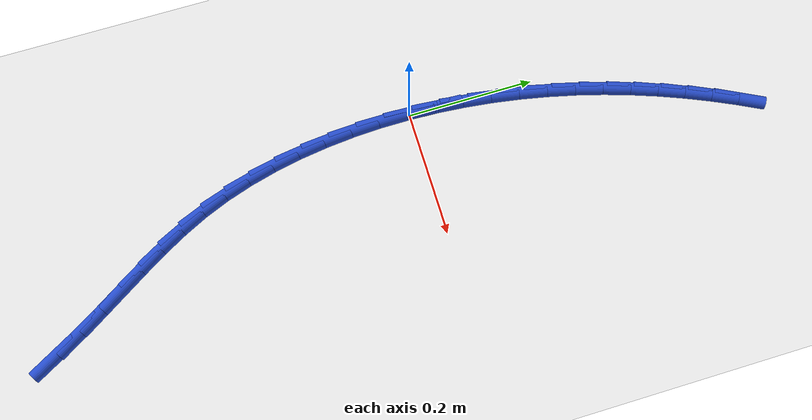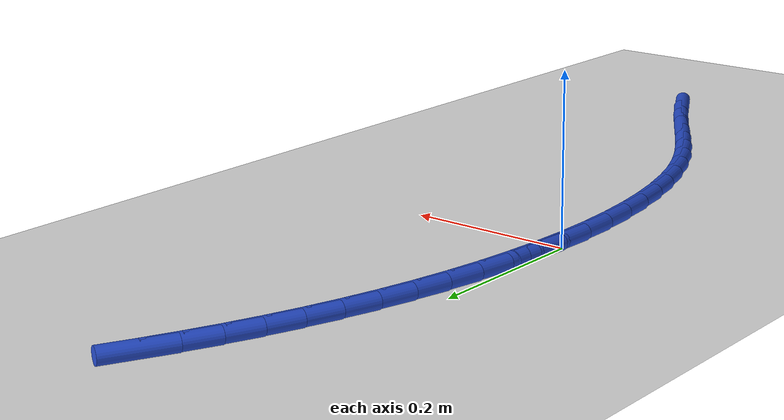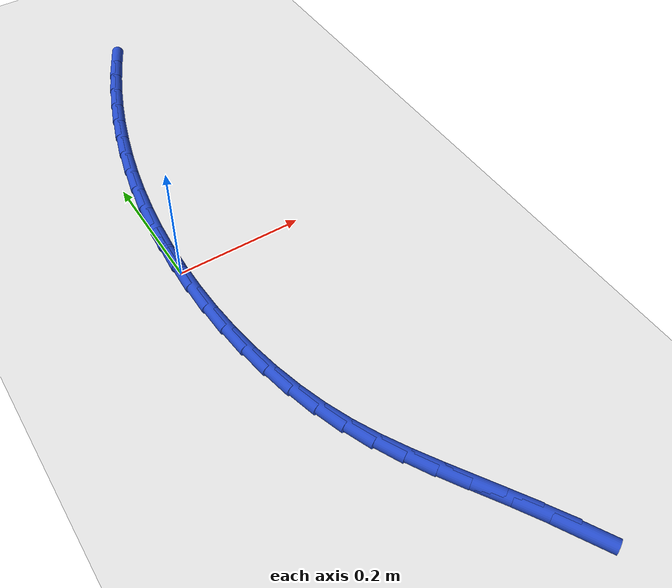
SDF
<sdf version="1.6">
 <world name="default">
  <model name="ground_plane">
   <static>1</static>
   <link name="link">
    <collision name="collision">
     <geometry><plane><normal>0 0 1</normal><size>100 100</size></plane></geometry>
     <surface><friction><ode><mu>100</mu><mu2>50</mu2></ode></friction></surface>
    </collision>
    <visual name="visual">
     <cast_shadows>0</cast_shadows>
     <geometry><plane><normal>0 0 1</normal><size>100 100</size></plane></geometry>
     <material>
      <script><uri>file://media/materials/scripts/gazebo.material</uri><name>Gazebo/WhiteGlow</name></script>
     </material>
    </visual>
   </link>
  </model>
  <model name="line">
   <link name="link_0">
    <pose>2.42861286636753e-17 1.457167719820518e-16 0.01 0 1.57 1.531080158508508</pose>
    <collision name="collision">
     <geometry><cylinder><radius>0.01</radius><length>0.08</length></cylinder></geometry>
    </collision>
    <visual name="visual">
     <material>
      <script><name>Gazebo/Blue</name><uri>file://media/materials/scripts/gazebo.material</uri></script>
     </material>
     <geometry><cylinder><radius>0.01</radius><length>0.08</length></cylinder></geometry>
    </visual>
   </link>
   <link name="link_1">
    <pose>0.001789789169502115 0.04504080056214195 0.01 0 1.57 1.4895727189833496</pose>
    <collision name="collision">
     <geometry><cylinder><radius>0.01</radius><length>0.08</length></cylinder></geometry>
    </collision>
    <visual name="visual">
     <material>
      <script><name>Gazebo/Blue</name><uri>file://media/materials/scripts/gazebo.material</uri></script>
     </material>
     <geometry><cylinder><radius>0.01</radius><length>0.08</length></cylinder></geometry>
    </visual>
   </link>
   <link name="link_2">
    <pose>0.005428026617422109 0.08973511059844634 0.01 0 1.57 1.4492588038348522</pose>
    <collision name="collision">
     <geometry><cylinder><radius>0.01</radius><length>0.08</length></cylinder></geometry>
    </collision>
    <visual name="visual">
     <material>
      <script><name>Gazebo/Blue</name><uri>file://media/materials/scripts/gazebo.material</uri></script>
     </material>
     <geometry><cylinder><radius>0.01</radius><length>0.08</length></cylinder></geometry>
    </visual>
   </link>
   <link name="link_3">
    <pose>0.010833899442178533 0.13399493310844862 0.01 0 1.57 1.4100301552491794</pose>
    <collision name="collision">
     <geometry><cylinder><radius>0.01</radius><length>0.08</length></cylinder></geometry>
    </collision>
    <visual name="visual">
     <material>
      <script><name>Gazebo/Blue</name><uri>file://media/materials/scripts/gazebo.material</uri></script>
     </material>
     <geometry><cylinder><radius>0.01</radius><length>0.08</length></cylinder></geometry>
    </visual>
   </link>
   <link name="link_4">
    <pose>0.017926594742189904 0.17773227109168405 0.01 0 1.57 1.371766287814006</pose>
    <collision name="collision">
     <geometry><cylinder><radius>0.01</radius><length>0.08</length></cylinder></geometry>
    </collision>
    <visual name="visual">
     <material>
      <script><name>Gazebo/Blue</name><uri>file://media/materials/scripts/gazebo.material</uri></script>
     </material>
     <geometry><cylinder><radius>0.01</radius><length>0.08</length></cylinder></geometry>
    </visual>
   </link>
   <link name="link_5">
    <pose>0.02662529961587474 0.22085912754768786 0.01 0 1.57 1.3343358180927007</pose>
    <collision name="collision">
     <geometry><cylinder><radius>0.01</radius><length>0.08</length></cylinder></geometry>
    </collision>
    <visual name="visual">
     <material>
      <script><name>Gazebo/Blue</name><uri>file://media/materials/scripts/gazebo.material</uri></script>
     </material>
     <geometry><cylinder><radius>0.01</radius><length>0.08</length></cylinder></geometry>
    </visual>
   </link>
   <link name="link_6">
    <pose>0.03684920116165155 0.2632875054759953 0.01 0 1.57 1.2975971799241293</pose>
    <collision name="collision">
     <geometry><cylinder><radius>0.01</radius><length>0.08</length></cylinder></geometry>
    </collision>
    <visual name="visual">
     <material>
      <script><name>Gazebo/Blue</name><uri>file://media/materials/scripts/gazebo.material</uri></script>
     </material>
     <geometry><cylinder><radius>0.01</radius><length>0.08</length></cylinder></geometry>
    </visual>
   </link>
   <link name="link_7">
    <pose>0.048517486477938895 0.3049294078761417 0.01 0 1.57 1.2613987756101461</pose>
    <collision name="collision">
     <geometry><cylinder><radius>0.01</radius><length>0.08</length></cylinder></geometry>
    </collision>
    <visual name="visual">
     <material>
      <script><name>Gazebo/Blue</name><uri>file://media/materials/scripts/gazebo.material</uri></script>
     </material>
     <geometry><cylinder><radius>0.01</radius><length>0.08</length></cylinder></geometry>
    </visual>
   </link>
   <link name="link_8">
    <pose>0.06154934842835679 0.34569686291029034 0.01 0 1.57 1.2257033828325472</pose>
    <collision name="collision">
     <geometry><cylinder><radius>0.01</radius><length>0.08</length></cylinder></geometry>
    </collision>
    <visual name="visual">
     <material>
      <script><name>Gazebo/Blue</name><uri>file://media/materials/scripts/gazebo.material</uri></script>
     </material>
     <geometry><cylinder><radius>0.01</radius><length>0.08</length></cylinder></geometry>
    </visual>
   </link>
   <link name="link_9">
    <pose>0.07587385214336027 0.3855449869443742 0.01 0 1.57 1.1909487412343198</pose>
    <collision name="collision">
     <geometry><cylinder><radius>0.01</radius><length>0.08</length></cylinder></geometry>
    </collision>
    <visual name="visual">
     <material>
      <script><name>Gazebo/Blue</name><uri>file://media/materials/scripts/gazebo.material</uri></script>
     </material>
     <geometry><cylinder><radius>0.01</radius><length>0.08</length></cylinder></geometry>
    </visual>
   </link>
   <link name="link_10">
    <pose>0.09145016946160522 0.4245602991922726 0.01 0 1.57 1.1575225053839593</pose>
    <collision name="collision">
     <geometry><cylinder><radius>0.01</radius><length>0.08</length></cylinder></geometry>
    </collision>
    <visual name="visual">
     <material>
      <script><name>Gazebo/Blue</name><uri>file://media/materials/scripts/gazebo.material</uri></script>
     </material>
     <geometry><cylinder><radius>0.01</radius><length>0.08</length></cylinder></geometry>
    </visual>
   </link>
   <link name="link_11">
    <pose>0.10824319095762662 0.46285427869330087 0.01 0 1.57 1.1257328218221974</pose>
    <collision name="collision">
     <geometry><cylinder><radius>0.01</radius><length>0.08</length></cylinder></geometry>
    </collision>
    <visual name="visual">
     <material>
      <script><name>Gazebo/Blue</name><uri>file://media/materials/scripts/gazebo.material</uri></script>
     </material>
     <geometry><cylinder><radius>0.01</radius><length>0.08</length></cylinder></geometry>
    </visual>
   </link>
   <link name="link_12">
    <pose>0.12621780720595926 0.5005384044867738 0.01 0 1.57 1.09584935270586</pose>
    <collision name="collision">
     <geometry><cylinder><radius>0.01</radius><length>0.08</length></cylinder></geometry>
    </collision>
    <visual name="visual">
     <material>
      <script><name>Gazebo/Blue</name><uri>file://media/materials/scripts/gazebo.material</uri></script>
     </material>
     <geometry><cylinder><radius>0.01</radius><length>0.08</length></cylinder></geometry>
    </visual>
   </link>
   <link name="link_165">
    <pose>0.21566522822672213 -0.6069583771386774 0.01 0 1.57 -1.056471864511683</pose>
    <collision name="collision">
     <geometry><cylinder><radius>0.01</radius><length>0.08</length></cylinder></geometry>
    </collision>
    <visual name="visual">
     <material>
      <script><name>Gazebo/Blue</name><uri>file://media/materials/scripts/gazebo.material</uri></script>
     </material>
     <geometry><cylinder><radius>0.01</radius><length>0.08</length></cylinder></geometry>
    </visual>
   </link>
   <link name="link_166">
    <pose>0.19250052519388777 -0.5659625326847768 0.01 0 1.57 -1.0220618310561693</pose>
    <collision name="collision">
     <geometry><cylinder><radius>0.01</radius><length>0.08</length></cylinder></geometry>
    </collision>
    <visual name="visual">
     <material>
      <script><name>Gazebo/Blue</name><uri>file://media/materials/scripts/gazebo.material</uri></script>
     </material>
     <geometry><cylinder><radius>0.01</radius><length>0.08</length></cylinder></geometry>
    </visual>
   </link>
   <link name="link_167">
    <pose>0.16891778993333817 -0.5273886505192017 0.01 0 1.57 -1.0032009907349833</pose>
    <collision name="collision">
     <geometry><cylinder><radius>0.01</radius><length>0.08</length></cylinder></geometry>
    </collision>
    <visual name="visual">
     <material>
      <script><name>Gazebo/Blue</name><uri>file://media/materials/scripts/gazebo.material</uri></script>
     </material>
     <geometry><cylinder><radius>0.01</radius><length>0.08</length></cylinder></geometry>
    </visual>
   </link>
   <link name="link_168">
    <pose>0.14540635526865378 -0.4905126638576568 0.01 0 1.57 -1.0020085257451217</pose>
    <collision name="collision">
     <geometry><cylinder><radius>0.01</radius><length>0.08</length></cylinder></geometry>
    </collision>
    <visual name="visual">
     <material>
      <script><name>Gazebo/Blue</name><uri>file://media/materials/scripts/gazebo.material</uri></script>
     </material>
     <geometry><cylinder><radius>0.01</radius><length>0.08</length></cylinder></geometry>
    </visual>
   </link>
   <link name="link_169">
    <pose>0.12245555402341497 -0.45461050591584695 0.01 0 1.57 -1.0199372149444859</pose>
    <collision name="collision">
     <geometry><cylinder><radius>0.01</radius><length>0.08</length></cylinder></geometry>
    </collision>
    <visual name="visual">
     <material>
      <script><name>Gazebo/Blue</name><uri>file://media/materials/scripts/gazebo.material</uri></script>
     </material>
     <geometry><cylinder><radius>0.01</radius><length>0.08</length></cylinder></geometry>
    </visual>
   </link>
   <link name="link_170">
    <pose>0.10055471902120182 -0.4189581099094767 0.01 0 1.57 -1.0575605730820306</pose>
    <collision name="collision">
     <geometry><cylinder><radius>0.01</radius><length>0.08</length></cylinder></geometry>
    </collision>
    <visual name="visual">
     <material>
      <script><name>Gazebo/Blue</name><uri>file://media/materials/scripts/gazebo.material</uri></script>
     </material>
     <geometry><cylinder><radius>0.01</radius><length>0.08</length></cylinder></geometry>
    </visual>
   </link>
   <link name="link_171">
    <pose>0.0801931830855956 -0.382831409054252 0.01 0 1.57 -1.1142387557919535</pose>
    <collision name="collision">
     <geometry><cylinder><radius>0.01</radius><length>0.08</length></cylinder></geometry>
    </collision>
    <visual name="visual">
     <material>
      <script><name>Gazebo/Blue</name><uri>file://media/materials/scripts/gazebo.material</uri></script>
     </material>
     <geometry><cylinder><radius>0.01</radius><length>0.08</length></cylinder></geometry>
    </visual>
   </link>
   <link name="link_172">
    <pose>0.06186027904017639 -0.3455063365658776 0.01 0 1.57 -1.185064305045793</pose>
    <collision name="collision">
     <geometry><cylinder><radius>0.01</radius><length>0.08</length></cylinder></geometry>
    </collision>
    <visual name="visual">
     <material>
      <script><name>Gazebo/Blue</name><uri>file://media/materials/scripts/gazebo.material</uri></script>
     </material>
     <geometry><cylinder><radius>0.01</radius><length>0.08</length></cylinder></geometry>
    </visual>
   </link>
   <link name="link_173">
    <pose>0.04597409153262554 -0.30638497461355746 0.01 0 1.57 -1.253915258636131</pose>
    <collision name="collision">
     <geometry><cylinder><radius>0.01</radius><length>0.08</length></cylinder></geometry>
    </collision>
    <visual name="visual">
     <material>
      <script><name>Gazebo/Blue</name><uri>file://media/materials/scripts/gazebo.material</uri></script>
     </material>
     <geometry><cylinder><radius>0.01</radius><length>0.08</length></cylinder></geometry>
    </visual>
   </link>
   <link name="link_174">
    <pose>0.032577613916485046 -0.26553352586677986 0.01 0 1.57 -1.3166629260462452</pose>
    <collision name="collision">
     <geometry><cylinder><radius>0.01</radius><length>0.08</length></cylinder></geometry>
    </collision>
    <visual name="visual">
     <material>
      <script><name>Gazebo/Blue</name><uri>file://media/materials/scripts/gazebo.material</uri></script>
     </material>
     <geometry><cylinder><radius>0.01</radius><length>0.08</length></cylinder></geometry>
    </visual>
   </link>
   <link name="link_175">
    <pose>0.02159084365619256 -0.2232359642221483 0.01 0 1.57 -1.374170332117864</pose>
    <collision name="collision">
     <geometry><cylinder><radius>0.01</radius><length>0.08</length></cylinder></geometry>
    </collision>
    <visual name="visual">
     <material>
      <script><name>Gazebo/Blue</name><uri>file://media/materials/scripts/gazebo.material</uri></script>
     </material>
     <geometry><cylinder><radius>0.01</radius><length>0.08</length></cylinder></geometry>
    </visual>
   </link>
   <link name="link_176">
    <pose>0.0129337063891065 -0.17977639075019938 0.01 0 1.57 -1.4272717006928923</pose>
    <collision name="collision">
     <geometry><cylinder><radius>0.01</radius><length>0.08</length></cylinder></geometry>
    </collision>
    <visual name="visual">
     <material>
      <script><name>Gazebo/Blue</name><uri>file://media/materials/scripts/gazebo.material</uri></script>
     </material>
     <geometry><cylinder><radius>0.01</radius><length>0.08</length></cylinder></geometry>
    </visual>
   </link>
   <link name="link_177">
    <pose>0.006526127752585775 -0.13543890652147278 0.01 0 1.57 -1.4767506872862697</pose>
    <collision name="collision">
     <geometry><cylinder><radius>0.01</radius><length>0.08</length></cylinder></geometry>
    </collision>
    <visual name="visual">
     <material>
      <script><name>Gazebo/Blue</name><uri>file://media/materials/scripts/gazebo.material</uri></script>
     </material>
     <geometry><cylinder><radius>0.01</radius><length>0.08</length></cylinder></geometry>
    </visual>
   </link>
   <link name="link_178">
    <pose>0.0022880333839887484 -0.0905076126065055 0.01 0 1.57 -1.5233378061552894</pose>
    <collision name="collision">
     <geometry><cylinder><radius>0.01</radius><length>0.08</length></cylinder></geometry>
    </collision>
    <visual name="visual">
     <material>
      <script><name>Gazebo/Blue</name><uri>file://media/materials/scripts/gazebo.material</uri></script>
     </material>
     <geometry><cylinder><radius>0.01</radius><length>0.08</length></cylinder></geometry>
    </visual>
   </link>
   <link name="link_179">
    <pose>0.00013934892067397637 -0.04526661007583522 0.01 0 1.57 -1.5677179323611266</pose>
    <collision name="collision">
     <geometry><cylinder><radius>0.01</radius><length>0.08</length></cylinder></geometry>
    </collision>
    <visual name="visual">
     <material>
      <script><name>Gazebo/Blue</name><uri>file://media/materials/scripts/gazebo.material</uri></script>
     </material>
     <geometry><cylinder><radius>0.01</radius><length>0.08</length></cylinder></geometry>
    </visual>
   </link>
   <link name="link_180">
    <pose>1.9081958235744878e-17 1.8735013540549517e-16 0.01 0 1.57 1.5310486172401305</pose>
    <collision name="collision">
     <geometry><cylinder><radius>0.01</radius><length>0.08</length></cylinder></geometry>
    </collision>
    <visual name="visual">
     <material>
      <script><name>Gazebo/Blue</name><uri>file://media/materials/scripts/gazebo.material</uri></script>
     </material>
     <geometry><cylinder><radius>0.01</radius><length>0.08</length></cylinder></geometry>
    </visual>
   </link>
   <link name="link_181">
    <pose>0.0017899122593254355 0.045008116550462954 0.01 0 1.57 1.5310486172401305</pose>
    <collision name="collision">
     <geometry><cylinder><radius>0.01</radius><length>0.08</length></cylinder></geometry>
    </collision>
    <visual name="visual">
     <material>
      <script><name>Gazebo/Blue</name><uri>file://media/materials/scripts/gazebo.material</uri></script>
     </material>
     <geometry><cylinder><radius>0.01</radius><length>0.08</length></cylinder></geometry>
    </visual>
   </link>
  </model>
 </world>
</sdf>
